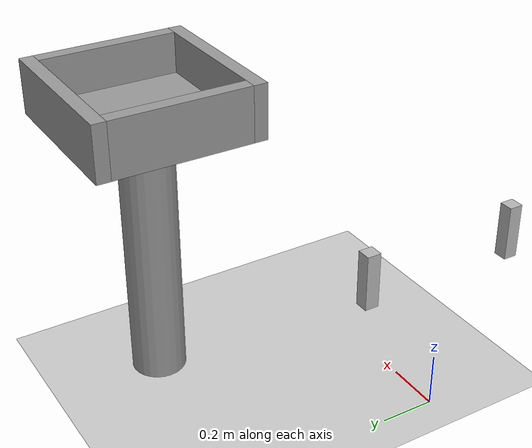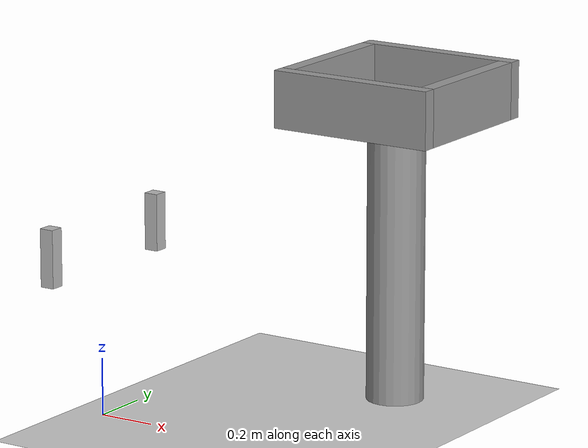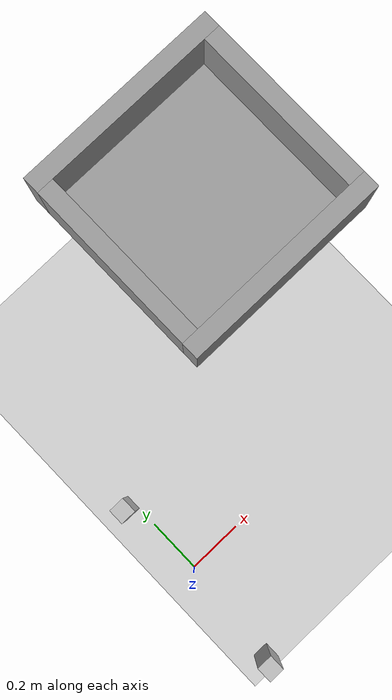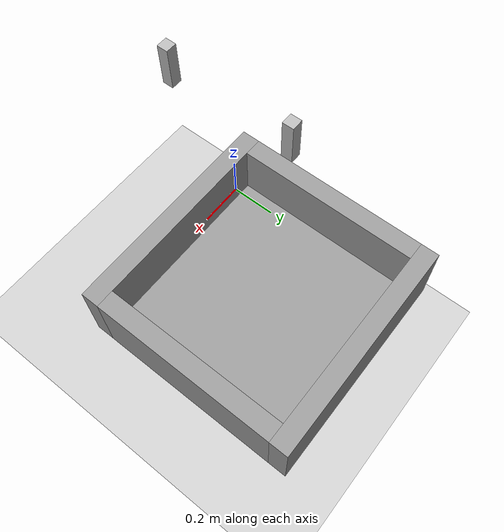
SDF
<sdf version="1.4">
 <world name="qual_task_2">
  <physics type="ode">
   <gravity>0 0 -9.81</gravity>
   <ode>
    <solver><type>quick</type><iters>50</iters><sor>1.4</sor></solver>
    <constraints>
     <cfm>0.0</cfm>
     <erp>0.2</erp>
     <contact_max_correcting_vel>100.0</contact_max_correcting_vel>
     <contact_surface_layer>0.0</contact_surface_layer>
    </constraints>
   </ode>
   <real_time_update_rate>1000</real_time_update_rate>
   <max_step_size>0.001</max_step_size>
  </physics>
  <scene><ambient>0.3 0.3 0.3 1.0</ambient></scene>
  <light type="directional" name="sun">
   <pose>0 0 100 0 0 0</pose>
   <diffuse>0.9 0.9 0.9 1</diffuse>
   <specular>0.1 0.1 0.1 1</specular>
   <attenuation>
    <range>1000</range>
    <constant>0.9</constant>
    <linear>0.01</linear>
    <quadratic>0.001</quadratic>
   </attenuation>
   <direction>-0.2 0.0 -1.0</direction>
  </light>
  <light type="point" name="light_bulb">
   <cast_shadows>false</cast_shadows>
   <pose>-3 0 4 0 0 0</pose>
   <diffuse>0.5 0.5 0.5 1</diffuse>
   <specular>0.0 0.0 0.0 1</specular>
   <attenuation>
    <range>80</range>
    <constant>0.9</constant>
    <linear>0.01</linear>
    <quadratic>0.001</quadratic>
   </attenuation>
  </light>
  <include><uri>model://ground_plane</uri></include>
  <model name="bin">
   <static>true</static>
   <pose>0.72 0.72 1.00 0 0 0</pose>
   <link name="link">
    <collision name="pedistal_collision">
     <pose>0 0 -0.5 0 0 0</pose>
     <geometry><cylinder><radius>0.1</radius><length>1.0</length></cylinder></geometry>
    </collision>
    <visual name="pedistal_visual">
     <pose>0 0 -0.5 0 0 0</pose>
     <geometry><cylinder><radius>0.1</radius><length>1.0</length></cylinder></geometry>
     <material>
      <script><uri>file://media/materials/scripts/gazebo.material</uri><name>Gazebo/Grey</name></script>
     </material>
    </visual>
    <collision name="bottom_collision"><geometry><box><size>0.5 0.5 0.05</size></box></geometry></collision>
    <visual name="bottom_visual">
     <geometry><box><size>0.5 0.5 0.05</size></box></geometry>
     <material>
      <script><uri>file://media/materials/scripts/gazebo.material</uri><name>Gazebo/Grey</name></script>
     </material>
    </visual>
    <collision name="side1_collision">
     <pose>0 0.275 0.075 0 0 0</pose>
     <geometry><box><size>0.6 0.05 0.2</size></box></geometry>
    </collision>
    <visual name="side1_visual">
     <pose>0 0.275 0.075 0 0 0</pose>
     <geometry><box><size>0.6 0.05 0.2</size></box></geometry>
     <material>
      <script><uri>file://media/materials/scripts/gazebo.material</uri><name>Gazebo/Grey</name></script>
     </material>
    </visual>
    <collision name="side2_collision">
     <pose>0 -0.275 0.075 0 0 0</pose>
     <geometry><box><size>0.6 0.05 0.2</size></box></geometry>
    </collision>
    <visual name="side2_visual">
     <pose>0 -0.275 0.075 0 0 0</pose>
     <geometry><box><size>0.6 0.05 0.2</size></box></geometry>
     <material>
      <script><uri>file://media/materials/scripts/gazebo.material</uri><name>Gazebo/Grey</name></script>
     </material>
    </visual>
    <collision name="side3_collision">
     <pose>0.275 0 0.075 0 0 0</pose>
     <geometry><box><size>0.05 0.5 0.2</size></box></geometry>
    </collision>
    <visual name="side3_visual">
     <pose>0.275 0 0.075 0 0 0</pose>
     <geometry><box><size>0.05 0.5 0.2</size></box></geometry>
     <material>
      <script><uri>file://media/materials/scripts/gazebo.material</uri><name>Gazebo/Grey</name></script>
     </material>
    </visual>
    <collision name="side4_collision">
     <pose>-0.275 0 0.075 0 0 0</pose>
     <geometry><box><size>0.05 0.5 0.2</size></box></geometry>
    </collision>
    <visual name="side4_visual">
     <pose>-0.275 0 0.075 0 0 0</pose>
     <geometry><box><size>0.05 0.5 0.2</size></box></geometry>
     <material>
      <script><uri>file://media/materials/scripts/gazebo.material</uri><name>Gazebo/Grey</name></script>
     </material>
    </visual>
   </link>
  </model>
  <plugin filename="libHydra.so" name="hydra">
   <device>/dev/hidraw4</device>
   <pivot>0.04 0 0</pivot>
   <grab>0.12 0 0</grab>
  </plugin>
  <model name="right_arm_goal">
   <static>true</static>
   <pose>0.013 -.294 0.622 1.5707 0 3.1415</pose>
   <link name="link">
    <visual name="visual"><geometry><box><size>.05 .2 .05</size></box></geometry></visual>
   </link>
  </model>
  <model name="left_arm_goal">
   <static>true</static>
   <pose>0.013 .294 0.622 -1.5707 0 -3.1415</pose>
   <link name="link">
    <visual name="visual"><geometry><box><size>.05 .2 .05</size></box></geometry></visual>
   </link>
  </model>
 </world>
</sdf>
